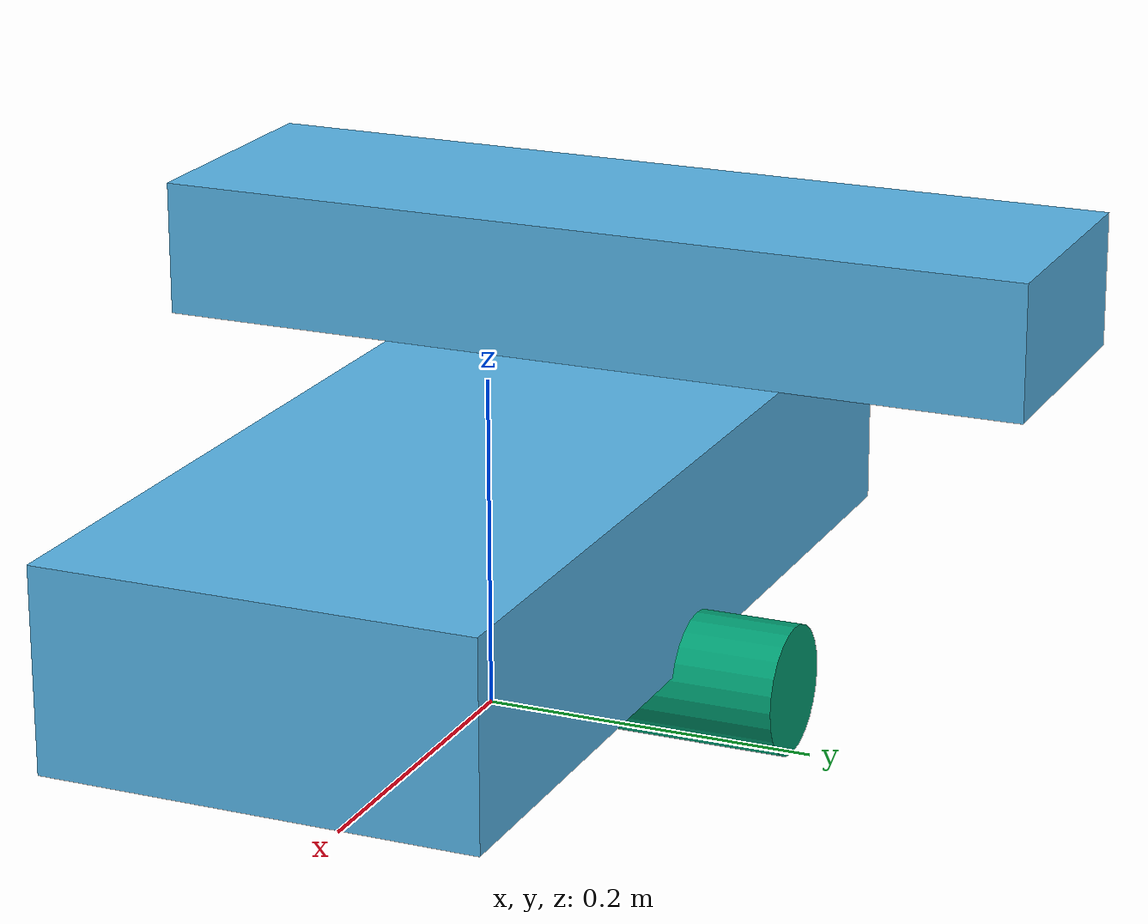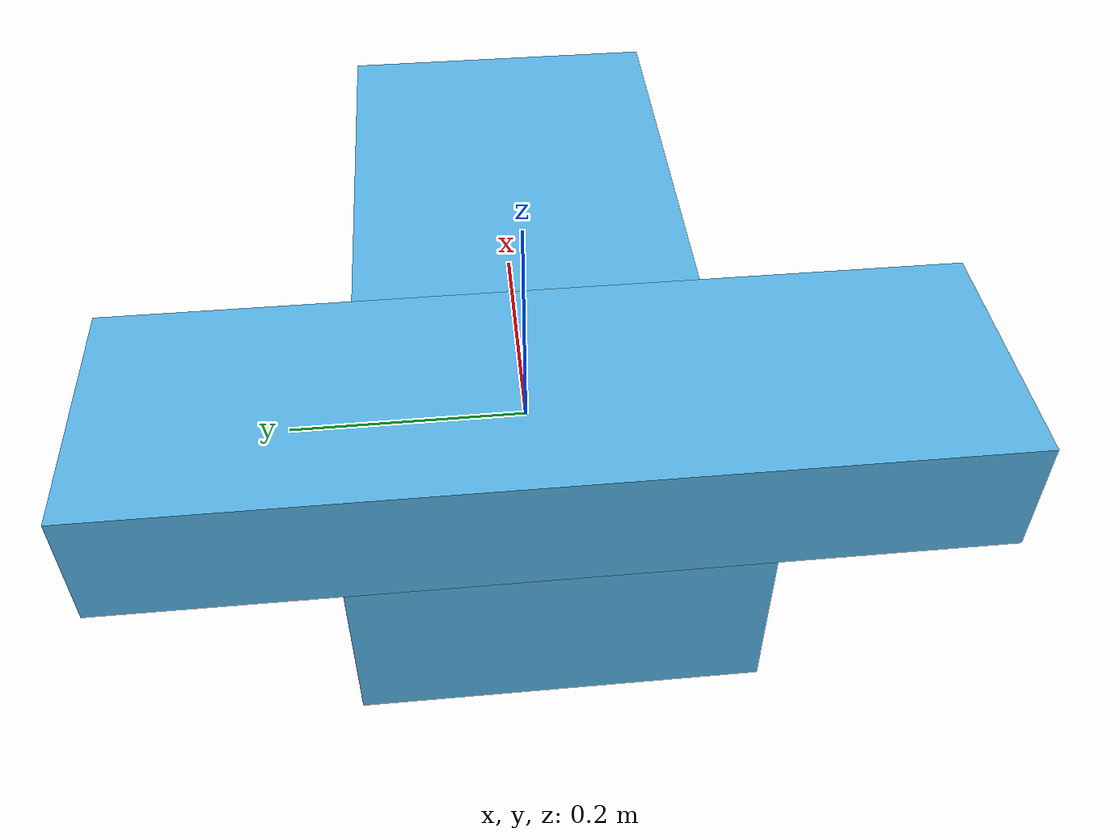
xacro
<?xml version="1.0"?>
<robot name="my_custom_cugo" xmlns:xacro="http://www.ros.org/wiki/xacro">

  <!-- cugo共通のurdf -->
  <xacro:include filename="$(find cugo_v4_5_ros2_control)/urdf/parts/cugo_v4_5_base.urdf.xacro" />
  <xacro:cugo_base />

  <!-- 任意のセンサを追加するurdf -->

</robot>

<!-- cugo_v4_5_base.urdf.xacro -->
<robot name="cugo" xmlns:xacro="http://www.ros.org/wiki/xacro">

  <xacro:macro name="cugo_base">

    <link name="base_footprint" />
    <link name="base_link">
      <visual>
        <geometry>
          <box size=" 0.590  0.260  0.120"/>
        </geometry>
        <origin xyz=" 0.000  0.000 -0.060" rpy="0.000 0.000 0.000"/>
      </visual>
      <visual>
        <geometry>
          <box size=" 0.165  0.562  0.085"/>
        </geometry>
        <origin xyz="-0.2125 0.000  0.0425" rpy="0.000 0.000 0.000"/>
      </visual>

      <collision>
        <geometry>
          <box size=" 0.590  0.260  0.120"/>
        </geometry>
        <origin xyz=" 0.000  0.000 -0.060" rpy="0.000 0.000 0.000"/>
      </collision>
      <collision>
        <geometry>
          <box size=" 0.165  0.562  0.085"/>
        </geometry>
        <origin xyz="-0.2125 0.000  0.0425" rpy="0.000 0.000 0.000"/>
      </collision>
    </link>

    <joint name="base_footprint_to_base_link_joint" type="fixed">
      <parent link="base_footprint"/>
      <child link="base_link"/>
      <origin xyz=" 0.000  0.000  0.170" rpy="0.000 0.000 0.000" />
    </joint>

    <link name="left_crawler_link">
      <visual>
        <geometry>
          <cylinder radius="0.03835" length="0.120"/>
        </geometry>
        <origin rpy="${pi/2} 0.000 0.000" xyz="0.000 0.000 0.000"/>
      </visual>
      <collision>
        <geometry>
          <cylinder radius="0.03835" length="0.120"/>
        </geometry>
        <origin rpy="${pi/2} 0.000 0.000" xyz="0.000 0.000 0.000"/>
      </collision>
    </link>

    <joint name="base_to_left_crawler_joint" type="continuous">
      <origin xyz="0.000 0.130 -0.13165" rpy="0.000 0.000 0.000"/>
      <parent link="base_link"/>
      <child link="left_crawler_link"/>
      <axis xyz="0 1 0"/>
    </joint>

    <link name="right_crawler_link">
      <visual>
        <geometry>
          <cylinder radius="0.03835" length="0.120"/>
        </geometry>
        <origin rpy="${pi/2} 0.000 0.000" xyz="0.000 0.000 0.000"/>
      </visual>
      <collision>
        <geometry>
          <cylinder radius="0.03835" length="0.120"/>
        </geometry>
        <origin rpy="${pi/2} 0.000 0.000" xyz="0.000 0.000 0.000"/>
      </collision>
    </link>

    <joint name="base_to_right_crawler_joint" type="continuous">
      <origin xyz="0.000 -0.130 -0.13165" rpy="0.000 0.000 0.000"/>
      <parent link="base_link"/>
      <child link="right_crawler_link"/>
      <axis xyz="0 1 0"/>
    </joint>

  </xacro:macro>

</robot>
